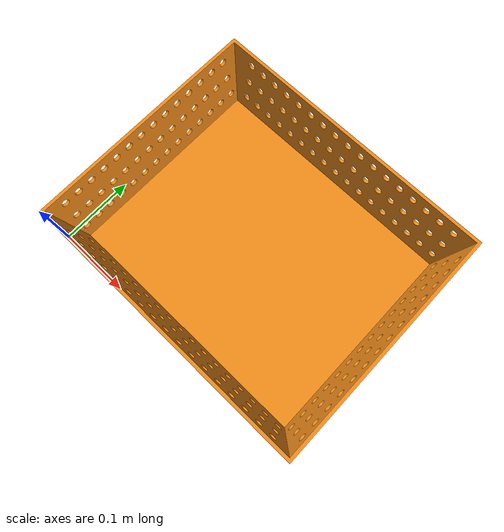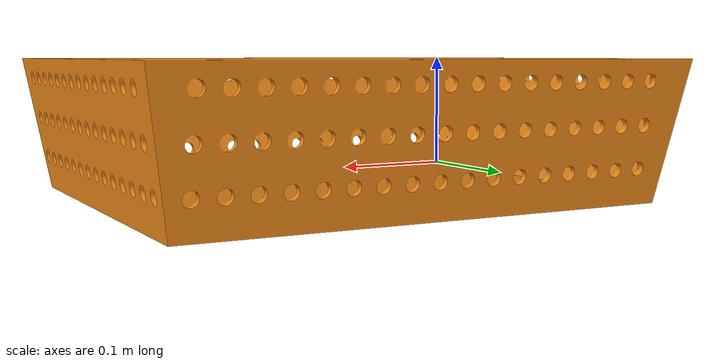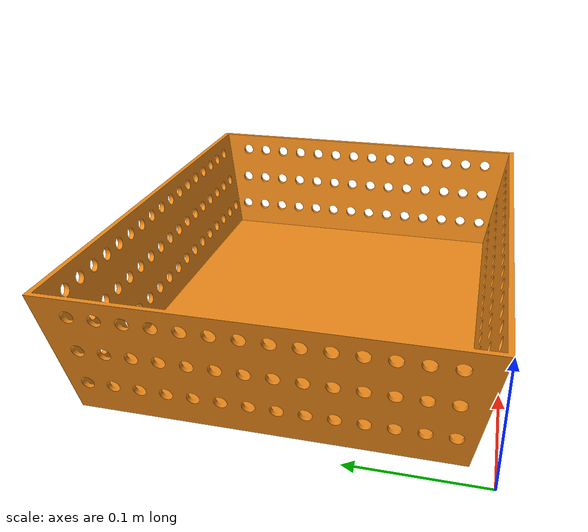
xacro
<?xml version="1.0"?>
<robot name="basket" xmlns:xacro="http://www.ros.org/wiki/xacro">

  <xacro:property name="M_PI" value="3.1415926535897931"/>

  <xacro:include filename="$(find object_description)/urdf/materials.xacro" />

  <link name="world"/>

  <joint name="basket" type="fixed">
    <parent link="world"/>
    <child link="basket"/>
    <origin xyz="0 0 0" rpy="0 0 0"/>
  </joint>

  <!-- Basket link-->
    <link name="basket">
      <visual>
        <origin xyz="0 0 0" rpy="0 0 0"/>
        <geometry>
          <mesh filename="package://object_description/meshes/basket.stl" scale="0.001 0.001 0.001" />
        </geometry>
        <material name="orange" />
      </visual>
      <collision>
        <origin xyz="0 0 0" rpy="0 0 0"/>
        <geometry>
          <mesh filename="package://object_description/meshes/basket.stl" scale="0.001 0.001 0.001" />
        </geometry>
      </collision>

    <inertial>
      <origin xyz="0 0 0" rpy="0 0 0"/>
      <mass value="0.9"/>
      <inertia
	  ixx="0.01" ixy="0.0" ixz="0.0"
	  iyy="0.01" iyz="0.0"
	  izz="0.01"/>
    </inertial>
  </link>

  <gazebo reference="basket">
    <material>Gazebo/Blue</material>
	<mu1>10000</mu1>
    <mu2>5000</mu2>
    <kp>10000.0</kp>
    <kd>1.0</kd>
  </gazebo>

</robot>
